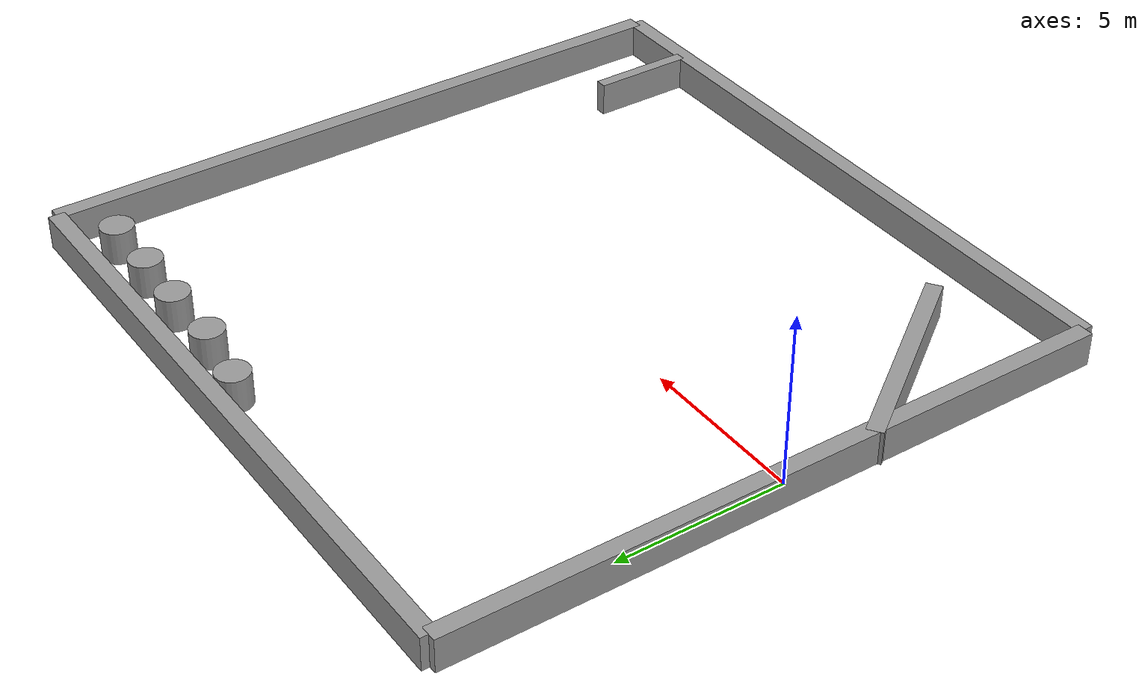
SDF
<?xml version='1.0'?>
<sdf version='1.6'>
  <model name='room_4'>
    <link name='link'>
      <pose frame=''>0 0 0 0 -0 0</pose>
      <inertial>
        <mass>20.0619</mass>
        <inertia>
          <ixx>674.551</ixx>
          <ixy>0</ixy>
          <ixz>0</ixz>
          <iyy>3.34366</iyy>
          <iyz>0</iyz>
          <izz>674.551</izz>
        </inertia>
        <pose frame=''>0 0 0 0 -0 0</pose>
      </inertial>
      <self_collide>0</self_collide>
      <kinematic>0</kinematic>
      <visual name='visual'>
        <geometry>
          <box>
            <size>0.5 20 1</size>
          </box>
        </geometry>
        <material>
          <script>
            <name>Gazebo/Grey</name>
            <uri>file://media/materials/scripts/gazebo.material</uri>
          </script>
          <ambient>0.3 0.3 0.3 1</ambient>
          <diffuse>0.7 0.7 0.7 1</diffuse>
          <specular>0.01 0.01 0.01 1</specular>
          <emissive>0 0 0 1</emissive>
        </material>
        <pose frame=''>0 0 0 0 -0 0</pose>
        <transparency>0</transparency>
        <cast_shadows>1</cast_shadows>
      </visual>
      <collision name='collision'>
        <laser_retro>0</laser_retro>
        <max_contacts>10</max_contacts>
        <pose frame=''>0 0 0 0 -0 0</pose>
        <geometry>
          <box>
            <size>0.5 20 1</size>
          </box>
        </geometry>
        <surface>
          <friction>
            <ode>
              <mu>1</mu>
              <mu2>1</mu2>
              <fdir1>0 0 0</fdir1>
              <slip1>0</slip1>
              <slip2>0</slip2>
            </ode>
            <torsional>
              <coefficient>1</coefficient>
              <patch_radius>0</patch_radius>
              <surface_radius>0</surface_radius>
              <use_patch_radius>1</use_patch_radius>
              <ode>
                <slip>0</slip>
              </ode>
            </torsional>
          </friction>
          <bounce>
            <restitution_coefficient>0</restitution_coefficient>
            <threshold>1e+06</threshold>
          </bounce>
          <contact>
            <collide_without_contact>0</collide_without_contact>
            <collide_without_contact_bitmask>1</collide_without_contact_bitmask>
            <collide_bitmask>1</collide_bitmask>
            <ode>
              <soft_cfm>0</soft_cfm>
              <soft_erp>0.2</soft_erp>
              <kp>1e+13</kp>
              <kd>1</kd>
              <max_vel>0.01</max_vel>
              <min_depth>0</min_depth>
            </ode>
            <bullet>
              <split_impulse>1</split_impulse>
              <split_impulse_penetration_threshold>-0.01</split_impulse_penetration_threshold>
              <soft_cfm>0</soft_cfm>
              <soft_erp>0.2</soft_erp>
              <kp>1e+13</kp>
              <kd>1</kd>
            </bullet>
          </contact>
        </surface>
      </collision>
    </link>
    <link name='link_0'>
      <pose frame=''>9.97269 9.97653 -0 0 -0 0</pose>
      <inertial>
        <mass>20</mass>
        <inertia>
          <ixx>3.18262</ixx>
          <ixy>0</ixy>
          <ixz>0</ixz>
          <iyy>581.858</iyy>
          <iyz>0</iyz>
          <izz>581.858</izz>
        </inertia>
        <pose frame=''>0 0 0 0 -0 0</pose>
      </inertial>
      <self_collide>0</self_collide>
      <kinematic>0</kinematic>
      <visual name='visual'>
        <pose frame=''>0 0 0 0 -0 0</pose>
        <geometry>
          <box>
            <size>20 0.5 1</size>
          </box>
        </geometry>
        <material>
          <lighting>1</lighting>
          <script>
            <uri>file://media/materials/scripts/gazebo.material</uri>
            <name>Gazebo/Grey</name>
          </script>
          <ambient>0.3 0.3 0.3 1</ambient>
          <diffuse>0.7 0.7 0.7 1</diffuse>
          <specular>0.01 0.01 0.01 1</specular>
          <emissive>0 0 0 1</emissive>
        </material>
        <transparency>0</transparency>
        <cast_shadows>1</cast_shadows>
      </visual>
      <collision name='collision'>
        <laser_retro>0</laser_retro>
        <max_contacts>10</max_contacts>
        <pose frame=''>0 0 0 0 -0 0</pose>
        <geometry>
          <box>
            <size>20 0.5 1</size>
          </box>
        </geometry>
        <surface>
          <friction>
            <ode>
              <mu>1</mu>
              <mu2>1</mu2>
              <fdir1>0 0 0</fdir1>
              <slip1>0</slip1>
              <slip2>0</slip2>
            </ode>
            <torsional>
              <coefficient>1</coefficient>
              <patch_radius>0</patch_radius>
              <surface_radius>0</surface_radius>
              <use_patch_radius>1</use_patch_radius>
              <ode>
                <slip>0</slip>
              </ode>
            </torsional>
          </friction>
          <bounce>
            <restitution_coefficient>0</restitution_coefficient>
            <threshold>1e+06</threshold>
          </bounce>
          <contact>
            <collide_without_contact>0</collide_without_contact>
            <collide_without_contact_bitmask>1</collide_without_contact_bitmask>
            <collide_bitmask>1</collide_bitmask>
            <ode>
              <soft_cfm>0</soft_cfm>
              <soft_erp>0.2</soft_erp>
              <kp>1e+13</kp>
              <kd>1</kd>
              <max_vel>0.01</max_vel>
              <min_depth>0</min_depth>
            </ode>
            <bullet>
              <split_impulse>1</split_impulse>
              <split_impulse_penetration_threshold>-0.01</split_impulse_penetration_threshold>
              <soft_cfm>0</soft_cfm>
              <soft_erp>0.2</soft_erp>
              <kp>1e+13</kp>
              <kd>1</kd>
            </bullet>
          </contact>
        </surface>
      </collision>
    </link>
    <link name='link_0_0'>
      <pose frame=''>17.4137 -8.35041 1.8e-05 0 -0 8.6e-05</pose>
      <inertial>
        <mass>1.03672</mass>
        <inertia>
          <ixx>0.887737</ixx>
          <ixy>0</ixy>
          <ixz>0</ixz>
          <iyy>0.0964041</iyy>
          <iyz>0</iyz>
          <izz>0.811354</izz>
        </inertia>
        <pose frame=''>0 0 0 0 -0 0</pose>
      </inertial>
      <self_collide>0</self_collide>
      <kinematic>0</kinematic>
      <visual name='visual'>
        <pose frame=''>0 0 0 0 -0 0</pose>
        <geometry>
          <box>
            <size>0.340406 3.04557 1</size>
          </box>
        </geometry>
        <material>
          <lighting>1</lighting>
          <script>
            <uri>file://media/materials/scripts/gazebo.material</uri>
            <name>Gazebo/Grey</name>
          </script>
          <ambient>0.3 0.3 0.3 1</ambient>
          <diffuse>0.7 0.7 0.7 1</diffuse>
          <specular>0.01 0.01 0.01 1</specular>
          <emissive>0 0 0 1</emissive>
        </material>
        <transparency>0</transparency>
        <cast_shadows>1</cast_shadows>
      </visual>
      <collision name='collision'>
        <laser_retro>0</laser_retro>
        <max_contacts>10</max_contacts>
        <pose frame=''>0 0 0 0 -0 0</pose>
        <geometry>
          <box>
            <size>0.340406 3.04557 1</size>
          </box>
        </geometry>
        <surface>
          <friction>
            <ode>
              <mu>1</mu>
              <mu2>1</mu2>
              <fdir1>0 0 0</fdir1>
              <slip1>0</slip1>
              <slip2>0</slip2>
            </ode>
            <torsional>
              <coefficient>1</coefficient>
              <patch_radius>0</patch_radius>
              <surface_radius>0</surface_radius>
              <use_patch_radius>1</use_patch_radius>
              <ode>
                <slip>0</slip>
              </ode>
            </torsional>
          </friction>
          <bounce>
            <restitution_coefficient>0</restitution_coefficient>
            <threshold>1e+06</threshold>
          </bounce>
          <contact>
            <collide_without_contact>0</collide_without_contact>
            <collide_without_contact_bitmask>1</collide_without_contact_bitmask>
            <collide_bitmask>1</collide_bitmask>
            <ode>
              <soft_cfm>0</soft_cfm>
              <soft_erp>0.2</soft_erp>
              <kp>1e+13</kp>
              <kd>1</kd>
              <max_vel>0.01</max_vel>
              <min_depth>0</min_depth>
            </ode>
            <bullet>
              <split_impulse>1</split_impulse>
              <split_impulse_penetration_threshold>-0.01</split_impulse_penetration_threshold>
              <soft_cfm>0</soft_cfm>
              <soft_erp>0.2</soft_erp>
              <kp>1e+13</kp>
              <kd>1</kd>
            </bullet>
          </contact>
        </surface>
      </collision>
    </link>
    <link name='link_1'>
      <pose frame=''>20 -0 -0 0 -0 0</pose>
      <inertial>
        <mass>18.076</mass>
        <inertia>
          <ixx>493.69</ixx>
          <ixy>0</ixy>
          <ixz>0</ixz>
          <iyy>3.01267</iyy>
          <iyz>0</iyz>
          <izz>493.69</izz>
        </inertia>
        <pose frame=''>0 0 0 0 -0 0</pose>
      </inertial>
      <self_collide>0</self_collide>
      <kinematic>0</kinematic>
      <visual name='visual'>
        <pose frame=''>0 0 0 0 -0 0</pose>
        <geometry>
          <box>
            <size>0.5 20 1</size>
          </box>
        </geometry>
        <material>
          <lighting>1</lighting>
          <script>
            <uri>file://media/materials/scripts/gazebo.material</uri>
            <name>Gazebo/Grey</name>
          </script>
          <ambient>0.3 0.3 0.3 1</ambient>
          <diffuse>0.7 0.7 0.7 1</diffuse>
          <specular>0.01 0.01 0.01 1</specular>
          <emissive>0 0 0 1</emissive>
        </material>
        <transparency>0</transparency>
        <cast_shadows>1</cast_shadows>
      </visual>
      <collision name='collision'>
        <laser_retro>0</laser_retro>
        <max_contacts>10</max_contacts>
        <pose frame=''>0 0 0 0 -0 0</pose>
        <geometry>
          <box>
            <size>0.5 20 1</size>
          </box>
        </geometry>
        <surface>
          <friction>
            <ode>
              <mu>1</mu>
              <mu2>1</mu2>
              <fdir1>0 0 0</fdir1>
              <slip1>0</slip1>
              <slip2>0</slip2>
            </ode>
            <torsional>
              <coefficient>1</coefficient>
              <patch_radius>0</patch_radius>
              <surface_radius>0</surface_radius>
              <use_patch_radius>1</use_patch_radius>
              <ode>
                <slip>0</slip>
              </ode>
            </torsional>
          </friction>
          <bounce>
            <restitution_coefficient>0</restitution_coefficient>
            <threshold>1e+06</threshold>
          </bounce>
          <contact>
            <collide_without_contact>0</collide_without_contact>
            <collide_without_contact_bitmask>1</collide_without_contact_bitmask>
            <collide_bitmask>1</collide_bitmask>
            <ode>
              <soft_cfm>0</soft_cfm>
              <soft_erp>0.2</soft_erp>
              <kp>1e+13</kp>
              <kd>1</kd>
              <max_vel>0.01</max_vel>
              <min_depth>0</min_depth>
            </ode>
            <bullet>
              <split_impulse>1</split_impulse>
              <split_impulse_penetration_threshold>-0.01</split_impulse_penetration_threshold>
              <soft_cfm>0</soft_cfm>
              <soft_erp>0.2</soft_erp>
              <kp>1e+13</kp>
              <kd>1</kd>
            </bullet>
          </contact>
        </surface>
      </collision>
    </link>
    <link name='link_1_0'>
      <pose frame=''>18.5607 8.79995 1.4e-05 0 -0 8.6e-05</pose>
      <inertial>
        <mass>1</mass>
        <inertia>
          <ixx>0.145833</ixx>
          <ixy>0</ixy>
          <ixz>0</ixz>
          <iyy>0.145833</iyy>
          <iyz>0</iyz>
          <izz>0.125</izz>
        </inertia>
      </inertial>
      <self_collide>0</self_collide>
      <kinematic>0</kinematic>
      <visual name='visual'>
        <pose frame=''>0 0 0 0 -0 0</pose>
        <geometry>
          <cylinder>
            <radius>0.5</radius>
            <length>1</length>
          </cylinder>
        </geometry>
        <material>
          <lighting>1</lighting>
          <script>
            <uri>file://media/materials/scripts/gazebo.material</uri>
            <name>Gazebo/Grey</name>
          </script>
          <ambient>0.3 0.3 0.3 1</ambient>
          <diffuse>0.7 0.7 0.7 1</diffuse>
          <specular>0.01 0.01 0.01 1</specular>
          <emissive>0 0 0 1</emissive>
        </material>
        <transparency>0</transparency>
        <cast_shadows>1</cast_shadows>
      </visual>
      <collision name='collision'>
        <laser_retro>0</laser_retro>
        <max_contacts>10</max_contacts>
        <pose frame=''>0 0 0 0 -0 0</pose>
        <geometry>
          <cylinder>
            <radius>0.5</radius>
            <length>1</length>
          </cylinder>
        </geometry>
        <surface>
          <friction>
            <ode>
              <mu>1</mu>
              <mu2>1</mu2>
              <fdir1>0 0 0</fdir1>
              <slip1>0</slip1>
              <slip2>0</slip2>
            </ode>
            <torsional>
              <coefficient>1</coefficient>
              <patch_radius>0</patch_radius>
              <surface_radius>0</surface_radius>
              <use_patch_radius>1</use_patch_radius>
              <ode>
                <slip>0</slip>
              </ode>
            </torsional>
          </friction>
          <bounce>
            <restitution_coefficient>0</restitution_coefficient>
            <threshold>1e+06</threshold>
          </bounce>
          <contact>
            <collide_without_contact>0</collide_without_contact>
            <collide_without_contact_bitmask>1</collide_without_contact_bitmask>
            <collide_bitmask>1</collide_bitmask>
            <ode>
              <soft_cfm>0</soft_cfm>
              <soft_erp>0.2</soft_erp>
              <kp>1e+13</kp>
              <kd>1</kd>
              <max_vel>0.01</max_vel>
              <min_depth>0</min_depth>
            </ode>
            <bullet>
              <split_impulse>1</split_impulse>
              <split_impulse_penetration_threshold>-0.01</split_impulse_penetration_threshold>
              <soft_cfm>0</soft_cfm>
              <soft_erp>0.2</soft_erp>
              <kp>1e+13</kp>
              <kd>1</kd>
            </bullet>
          </contact>
        </surface>
      </collision>
    </link>
    <link name='link_2'>
      <pose frame=''>10 -10 0 0 -0 0</pose>
      <inertial>
        <mass>18.8281</mass>
        <inertia>
          <ixx>3.13802</ixx>
          <ixy>0</ixy>
          <ixz>0</ixz>
          <iyy>557.78</iyy>
          <iyz>0</iyz>
          <izz>557.78</izz>
        </inertia>
        <pose frame=''>0 0 0 0 -0 0</pose>
      </inertial>
      <self_collide>0</self_collide>
      <kinematic>0</kinematic>
      <visual name='visual'>
        <pose frame=''>0 0 0 0 -0 0</pose>
        <geometry>
          <box>
            <size>20 0.5 1</size>
          </box>
        </geometry>
        <material>
          <lighting>1</lighting>
          <script>
            <uri>file://media/materials/scripts/gazebo.material</uri>
            <name>Gazebo/Grey</name>
          </script>
          <ambient>0.3 0.3 0.3 1</ambient>
          <diffuse>0.7 0.7 0.7 1</diffuse>
          <specular>0.01 0.01 0.01 1</specular>
          <emissive>0 0 0 1</emissive>
        </material>
        <transparency>0</transparency>
        <cast_shadows>1</cast_shadows>
      </visual>
      <collision name='collision'>
        <laser_retro>0</laser_retro>
        <max_contacts>10</max_contacts>
        <pose frame=''>0 0 0 0 -0 0</pose>
        <geometry>
          <box>
            <size>20 0.5 1</size>
          </box>
        </geometry>
        <surface>
          <friction>
            <ode>
              <mu>1</mu>
              <mu2>1</mu2>
              <fdir1>0 0 0</fdir1>
              <slip1>0</slip1>
              <slip2>0</slip2>
            </ode>
            <torsional>
              <coefficient>1</coefficient>
              <patch_radius>0</patch_radius>
              <surface_radius>0</surface_radius>
              <use_patch_radius>1</use_patch_radius>
              <ode>
                <slip>0</slip>
              </ode>
            </torsional>
          </friction>
          <bounce>
            <restitution_coefficient>0</restitution_coefficient>
            <threshold>1e+06</threshold>
          </bounce>
          <contact>
            <collide_without_contact>0</collide_without_contact>
            <collide_without_contact_bitmask>1</collide_without_contact_bitmask>
            <collide_bitmask>1</collide_bitmask>
            <ode>
              <soft_cfm>0</soft_cfm>
              <soft_erp>0.2</soft_erp>
              <kp>1e+13</kp>
              <kd>1</kd>
              <max_vel>0.01</max_vel>
              <min_depth>0</min_depth>
            </ode>
            <bullet>
              <split_impulse>1</split_impulse>
              <split_impulse_penetration_threshold>-0.01</split_impulse_penetration_threshold>
              <soft_cfm>0</soft_cfm>
              <soft_erp>0.2</soft_erp>
              <kp>1e+13</kp>
              <kd>1</kd>
            </bullet>
          </contact>
        </surface>
      </collision>
    </link>
    <link name='link_2_0'>
      <pose frame=''>16.6555 8.8339 1.4e-05 0 -0 8.6e-05</pose>
      <inertial>
        <mass>1</mass>
        <inertia>
          <ixx>0.145833</ixx>
          <ixy>0</ixy>
          <ixz>0</ixz>
          <iyy>0.145833</iyy>
          <iyz>0</iyz>
          <izz>0.125</izz>
        </inertia>
      </inertial>
      <self_collide>0</self_collide>
      <kinematic>0</kinematic>
      <visual name='visual'>
        <pose frame=''>0 0 0 0 -0 0</pose>
        <geometry>
          <cylinder>
            <radius>0.5</radius>
            <length>1</length>
          </cylinder>
        </geometry>
        <material>
          <lighting>1</lighting>
          <script>
            <uri>file://media/materials/scripts/gazebo.material</uri>
            <name>Gazebo/Grey</name>
          </script>
          <ambient>0.3 0.3 0.3 1</ambient>
          <diffuse>0.7 0.7 0.7 1</diffuse>
          <specular>0.01 0.01 0.01 1</specular>
          <emissive>0 0 0 1</emissive>
        </material>
        <transparency>0</transparency>
        <cast_shadows>1</cast_shadows>
      </visual>
      <collision name='collision'>
        <laser_retro>0</laser_retro>
        <max_contacts>10</max_contacts>
        <pose frame=''>0 0 0 0 -0 0</pose>
        <geometry>
          <cylinder>
            <radius>0.5</radius>
            <length>1</length>
          </cylinder>
        </geometry>
        <surface>
          <friction>
            <ode>
              <mu>1</mu>
              <mu2>1</mu2>
              <fdir1>0 0 0</fdir1>
              <slip1>0</slip1>
              <slip2>0</slip2>
            </ode>
            <torsional>
              <coefficient>1</coefficient>
              <patch_radius>0</patch_radius>
              <surface_radius>0</surface_radius>
              <use_patch_radius>1</use_patch_radius>
              <ode>
                <slip>0</slip>
              </ode>
            </torsional>
          </friction>
          <bounce>
            <restitution_coefficient>0</restitution_coefficient>
            <threshold>1e+06</threshold>
          </bounce>
          <contact>
            <collide_without_contact>0</collide_without_contact>
            <collide_without_contact_bitmask>1</collide_without_contact_bitmask>
            <collide_bitmask>1</collide_bitmask>
            <ode>
              <soft_cfm>0</soft_cfm>
              <soft_erp>0.2</soft_erp>
              <kp>1e+13</kp>
              <kd>1</kd>
              <max_vel>0.01</max_vel>
              <min_depth>0</min_depth>
            </ode>
            <bullet>
              <split_impulse>1</split_impulse>
              <split_impulse_penetration_threshold>-0.01</split_impulse_penetration_threshold>
              <soft_cfm>0</soft_cfm>
              <soft_erp>0.2</soft_erp>
              <kp>1e+13</kp>
              <kd>1</kd>
            </bullet>
          </contact>
        </surface>
      </collision>
    </link>
    <link name='link_4'>
      <pose frame=''>14.8209 8.91674 1.3e-05 0 -0 8.6e-05</pose>
      <inertial>
        <mass>1</mass>
        <inertia>
          <ixx>0.145833</ixx>
          <ixy>0</ixy>
          <ixz>0</ixz>
          <iyy>0.145833</iyy>
          <iyz>0</iyz>
          <izz>0.125</izz>
        </inertia>
      </inertial>
      <self_collide>0</self_collide>
      <kinematic>0</kinematic>
      <visual name='visual'>
        <pose frame=''>0 0 0 0 -0 0</pose>
        <geometry>
          <cylinder>
            <radius>0.5</radius>
            <length>1</length>
          </cylinder>
        </geometry>
        <material>
          <lighting>1</lighting>
          <script>
            <uri>file://media/materials/scripts/gazebo.material</uri>
            <name>Gazebo/Grey</name>
          </script>
          <ambient>0.3 0.3 0.3 1</ambient>
          <diffuse>0.7 0.7 0.7 1</diffuse>
          <specular>0.01 0.01 0.01 1</specular>
          <emissive>0 0 0 1</emissive>
        </material>
        <transparency>0</transparency>
        <cast_shadows>1</cast_shadows>
      </visual>
      <collision name='collision'>
        <laser_retro>0</laser_retro>
        <max_contacts>10</max_contacts>
        <pose frame=''>0 0 0 0 -0 0</pose>
        <geometry>
          <cylinder>
            <radius>0.5</radius>
            <length>1</length>
          </cylinder>
        </geometry>
        <surface>
          <friction>
            <ode>
              <mu>1</mu>
              <mu2>1</mu2>
              <fdir1>0 0 0</fdir1>
              <slip1>0</slip1>
              <slip2>0</slip2>
            </ode>
            <torsional>
              <coefficient>1</coefficient>
              <patch_radius>0</patch_radius>
              <surface_radius>0</surface_radius>
              <use_patch_radius>1</use_patch_radius>
              <ode>
                <slip>0</slip>
              </ode>
            </torsional>
          </friction>
          <bounce>
            <restitution_coefficient>0</restitution_coefficient>
            <threshold>1e+06</threshold>
          </bounce>
          <contact>
            <collide_without_contact>0</collide_without_contact>
            <collide_without_contact_bitmask>1</collide_without_contact_bitmask>
            <collide_bitmask>1</collide_bitmask>
            <ode>
              <soft_cfm>0</soft_cfm>
              <soft_erp>0.2</soft_erp>
              <kp>1e+13</kp>
              <kd>1</kd>
              <max_vel>0.01</max_vel>
              <min_depth>0</min_depth>
            </ode>
            <bullet>
              <split_impulse>1</split_impulse>
              <split_impulse_penetration_threshold>-0.01</split_impulse_penetration_threshold>
              <soft_cfm>0</soft_cfm>
              <soft_erp>0.2</soft_erp>
              <kp>1e+13</kp>
              <kd>1</kd>
            </bullet>
          </contact>
        </surface>
      </collision>
    </link>
    <link name='link_5'>
      <pose frame=''>12.8202 8.90936 1.2e-05 0 -0 8.6e-05</pose>
      <inertial>
        <mass>1</mass>
        <inertia>
          <ixx>0.145833</ixx>
          <ixy>0</ixy>
          <ixz>0</ixz>
          <iyy>0.145833</iyy>
          <iyz>0</iyz>
          <izz>0.125</izz>
        </inertia>
      </inertial>
      <self_collide>0</self_collide>
      <kinematic>0</kinematic>
      <visual name='visual'>
        <pose frame=''>0 0 0 0 -0 0</pose>
        <geometry>
          <cylinder>
            <radius>0.5</radius>
            <length>1</length>
          </cylinder>
        </geometry>
        <material>
          <lighting>1</lighting>
          <script>
            <uri>file://media/materials/scripts/gazebo.material</uri>
            <name>Gazebo/Grey</name>
          </script>
          <ambient>0.3 0.3 0.3 1</ambient>
          <diffuse>0.7 0.7 0.7 1</diffuse>
          <specular>0.01 0.01 0.01 1</specular>
          <emissive>0 0 0 1</emissive>
        </material>
        <transparency>0</transparency>
        <cast_shadows>1</cast_shadows>
      </visual>
      <collision name='collision'>
        <laser_retro>0</laser_retro>
        <max_contacts>10</max_contacts>
        <pose frame=''>0 0 0 0 -0 0</pose>
        <geometry>
          <cylinder>
            <radius>0.5</radius>
            <length>1</length>
          </cylinder>
        </geometry>
        <surface>
          <friction>
            <ode>
              <mu>1</mu>
              <mu2>1</mu2>
              <fdir1>0 0 0</fdir1>
              <slip1>0</slip1>
              <slip2>0</slip2>
            </ode>
            <torsional>
              <coefficient>1</coefficient>
              <patch_radius>0</patch_radius>
              <surface_radius>0</surface_radius>
              <use_patch_radius>1</use_patch_radius>
              <ode>
                <slip>0</slip>
              </ode>
            </torsional>
          </friction>
          <bounce>
            <restitution_coefficient>0</restitution_coefficient>
            <threshold>1e+06</threshold>
          </bounce>
          <contact>
            <collide_without_contact>0</collide_without_contact>
            <collide_without_contact_bitmask>1</collide_without_contact_bitmask>
            <collide_bitmask>1</collide_bitmask>
            <ode>
              <soft_cfm>0</soft_cfm>
              <soft_erp>0.2</soft_erp>
              <kp>1e+13</kp>
              <kd>1</kd>
              <max_vel>0.01</max_vel>
              <min_depth>0</min_depth>
            </ode>
            <bullet>
              <split_impulse>1</split_impulse>
              <split_impulse_penetration_threshold>-0.01</split_impulse_penetration_threshold>
              <soft_cfm>0</soft_cfm>
              <soft_erp>0.2</soft_erp>
              <kp>1e+13</kp>
              <kd>1</kd>
            </bullet>
          </contact>
        </surface>
      </collision>
    </link>
    <link name='link_6'>
      <pose frame=''>10.813 9.19796 1.1e-05 0 -0 8.6e-05</pose>
      <inertial>
        <mass>1</mass>
        <inertia>
          <ixx>0.145833</ixx>
          <ixy>0</ixy>
          <ixz>0</ixz>
          <iyy>0.145833</iyy>
          <iyz>0</iyz>
          <izz>0.125</izz>
        </inertia>
      </inertial>
      <self_collide>0</self_collide>
      <kinematic>0</kinematic>
      <visual name='visual'>
        <pose frame=''>0 0 0 0 -0 0</pose>
        <geometry>
          <cylinder>
            <radius>0.5</radius>
            <length>1</length>
          </cylinder>
        </geometry>
        <material>
          <lighting>1</lighting>
          <script>
            <uri>file://media/materials/scripts/gazebo.material</uri>
            <name>Gazebo/Grey</name>
          </script>
          <ambient>0.3 0.3 0.3 1</ambient>
          <diffuse>0.7 0.7 0.7 1</diffuse>
          <specular>0.01 0.01 0.01 1</specular>
          <emissive>0 0 0 1</emissive>
        </material>
        <transparency>0</transparency>
        <cast_shadows>1</cast_shadows>
      </visual>
      <collision name='collision'>
        <laser_retro>0</laser_retro>
        <max_contacts>10</max_contacts>
        <pose frame=''>0 0 0 0 -0 0</pose>
        <geometry>
          <cylinder>
            <radius>0.5</radius>
            <length>1</length>
          </cylinder>
        </geometry>
        <surface>
          <friction>
            <ode>
              <mu>1</mu>
              <mu2>1</mu2>
              <fdir1>0 0 0</fdir1>
              <slip1>0</slip1>
              <slip2>0</slip2>
            </ode>
            <torsional>
              <coefficient>1</coefficient>
              <patch_radius>0</patch_radius>
              <surface_radius>0</surface_radius>
              <use_patch_radius>1</use_patch_radius>
              <ode>
                <slip>0</slip>
              </ode>
            </torsional>
          </friction>
          <bounce>
            <restitution_coefficient>0</restitution_coefficient>
            <threshold>1e+06</threshold>
          </bounce>
          <contact>
            <collide_without_contact>0</collide_without_contact>
            <collide_without_contact_bitmask>1</collide_without_contact_bitmask>
            <collide_bitmask>1</collide_bitmask>
            <ode>
              <soft_cfm>0</soft_cfm>
              <soft_erp>0.2</soft_erp>
              <kp>1e+13</kp>
              <kd>1</kd>
              <max_vel>0.01</max_vel>
              <min_depth>0</min_depth>
            </ode>
            <bullet>
              <split_impulse>1</split_impulse>
              <split_impulse_penetration_threshold>-0.01</split_impulse_penetration_threshold>
              <soft_cfm>0</soft_cfm>
              <soft_erp>0.2</soft_erp>
              <kp>1e+13</kp>
              <kd>1</kd>
            </bullet>
          </contact>
        </surface>
      </collision>
    </link>
    <link name='link_7'>
      <pose frame=''>1.7817 -5.40911 1e-05 -1e-06 -0 0.617071</pose>
      <inertial>
        <mass>3.18264</mass>
        <inertia>
          <ixx>11.9008</ixx>
          <ixy>0</ixy>
          <ixz>0</ixz>
          <iyy>0.326454</iyy>
          <iyz>0</iyz>
          <izz>11.6968</izz>
        </inertia>
        <pose frame=''>0 0 0 0 -0 0</pose>
      </inertial>
      <self_collide>0</self_collide>
      <kinematic>0</kinematic>
      <visual name='visual'>
        <pose frame=''>0 0 0 0 -0 0</pose>
        <geometry>
          <box>
            <size>0.480513 6.62357 1</size>
          </box>
        </geometry>
        <material>
          <lighting>1</lighting>
          <script>
            <uri>file://media/materials/scripts/gazebo.material</uri>
            <name>Gazebo/Grey</name>
          </script>
          <ambient>0.3 0.3 0.3 1</ambient>
          <diffuse>0.7 0.7 0.7 1</diffuse>
          <specular>0.01 0.01 0.01 1</specular>
          <emissive>0 0 0 1</emissive>
        </material>
        <transparency>0</transparency>
        <cast_shadows>1</cast_shadows>
      </visual>
      <collision name='collision'>
        <laser_retro>0</laser_retro>
        <max_contacts>10</max_contacts>
        <pose frame=''>0 0 0 0 -0 0</pose>
        <geometry>
          <box>
            <size>0.480513 6.62357 1</size>
          </box>
        </geometry>
        <surface>
          <friction>
            <ode>
              <mu>1</mu>
              <mu2>1</mu2>
              <fdir1>0 0 0</fdir1>
              <slip1>0</slip1>
              <slip2>0</slip2>
            </ode>
            <torsional>
              <coefficient>1</coefficient>
              <patch_radius>0</patch_radius>
              <surface_radius>0</surface_radius>
              <use_patch_radius>1</use_patch_radius>
              <ode>
                <slip>0</slip>
              </ode>
            </torsional>
          </friction>
          <bounce>
            <restitution_coefficient>0</restitution_coefficient>
            <threshold>1e+06</threshold>
          </bounce>
          <contact>
            <collide_without_contact>0</collide_without_contact>
            <collide_without_contact_bitmask>1</collide_without_contact_bitmask>
            <collide_bitmask>1</collide_bitmask>
            <ode>
              <soft_cfm>0</soft_cfm>
              <soft_erp>0.2</soft_erp>
              <kp>1e+13</kp>
              <kd>1</kd>
              <max_vel>0.01</max_vel>
              <min_depth>0</min_depth>
            </ode>
            <bullet>
              <split_impulse>1</split_impulse>
              <split_impulse_penetration_threshold>-0.01</split_impulse_penetration_threshold>
              <soft_cfm>0</soft_cfm>
              <soft_erp>0.2</soft_erp>
              <kp>1e+13</kp>
              <kd>1</kd>
            </bullet>
          </contact>
        </surface>
      </collision>
    </link>
    <joint name='link_0_0_JOINT_0' type='fixed'>
      <parent>link_0_0</parent>
      <child>link_2</child>
      <pose frame=''>0 0 0 0 -0 0</pose>
      <physics>
        <ode>
          <limit>
            <cfm>0</cfm>
            <erp>0.2</erp>
          </limit>
          <suspension>
            <cfm>0</cfm>
            <erp>0.2</erp>
          </suspension>
        </ode>
      </physics>
    </joint>
    <joint name='link_0_JOINT_1' type='screw'>
      <parent>link_0</parent>
      <child>link_1</child>
      <pose frame=''>0 0 0 0 -0 0</pose>
      <axis>
        <xyz>1 0 0</xyz>
        <use_parent_model_frame>0</use_parent_model_frame>
        <limit>
          <lower>-1.79769e+308</lower>
          <upper>1.79769e+308</upper>
          <effort>-1</effort>
          <velocity>-1</velocity>
        </limit>
        <dynamics>
          <spring_reference>0</spring_reference>
          <spring_stiffness>0</spring_stiffness>
          <damping>0</damping>
          <friction>0</friction>
        </dynamics>
      </axis>
      <physics>
        <ode>
          <limit>
            <cfm>0</cfm>
            <erp>0.2</erp>
          </limit>
          <suspension>
            <cfm>0</cfm>
            <erp>0.2</erp>
          </suspension>
        </ode>
      </physics>
    </joint>
    <joint name='link_0_JOINT_2' type='screw'>
      <parent>link_0</parent>
      <child>link_2</child>
      <pose frame=''>0 0 0 0 -0 0</pose>
      <axis>
        <xyz>1 0 0</xyz>
        <use_parent_model_frame>0</use_parent_model_frame>
        <limit>
          <lower>-1.79769e+308</lower>
          <upper>1.79769e+308</upper>
          <effort>-1</effort>
          <velocity>-1</velocity>
        </limit>
        <dynamics>
          <spring_reference>0</spring_reference>
          <spring_stiffness>0</spring_stiffness>
          <damping>0</damping>
          <friction>0</friction>
        </dynamics>
      </axis>
      <physics>
        <ode>
          <limit>
            <cfm>0</cfm>
            <erp>0.2</erp>
          </limit>
          <suspension>
            <cfm>0</cfm>
            <erp>0.2</erp>
          </suspension>
        </ode>
      </physics>
    </joint>
    <joint name='link_0_JOINT_6' type='fixed'>
      <parent>link_0</parent>
      <child>link_5</child>
      <pose frame=''>0 0 0 0 -0 0</pose>
      <physics>
        <ode>
          <limit>
            <cfm>0</cfm>
            <erp>0.2</erp>
          </limit>
          <suspension>
            <cfm>0</cfm>
            <erp>0.2</erp>
          </suspension>
        </ode>
      </physics>
    </joint>
    <joint name='link_1_0_JOINT_1' type='fixed'>
      <parent>link_1_0</parent>
      <child>link_1</child>
      <pose frame=''>0 0 0 0 -0 0</pose>
      <physics>
        <ode>
          <limit>
            <cfm>0</cfm>
            <erp>0.2</erp>
          </limit>
          <suspension>
            <cfm>0</cfm>
            <erp>0.2</erp>
          </suspension>
        </ode>
      </physics>
    </joint>
    <joint name='link_2_0_JOINT_2' type='fixed'>
      <parent>link_2_0</parent>
      <child>link_1_0</child>
      <pose frame=''>0 0 0 0 -0 0</pose>
      <physics>
        <ode>
          <limit>
            <cfm>0</cfm>
            <erp>0.2</erp>
          </limit>
          <suspension>
            <cfm>0</cfm>
            <erp>0.2</erp>
          </suspension>
        </ode>
      </physics>
    </joint>
    <joint name='link_4_JOINT_3' type='fixed'>
      <parent>link_4</parent>
      <child>link_2_0</child>
      <pose frame=''>0 0 0 0 -0 0</pose>
      <physics>
        <ode>
          <limit>
            <cfm>0</cfm>
            <erp>0.2</erp>
          </limit>
          <suspension>
            <cfm>0</cfm>
            <erp>0.2</erp>
          </suspension>
        </ode>
      </physics>
    </joint>
    <joint name='link_4_JOINT_4' type='fixed'>
      <parent>link_4</parent>
      <child>link_1</child>
      <pose frame=''>0 0 0 0 -0 0</pose>
      <physics>
        <ode>
          <limit>
            <cfm>0</cfm>
            <erp>0.2</erp>
          </limit>
          <suspension>
            <cfm>0</cfm>
            <erp>0.2</erp>
          </suspension>
        </ode>
      </physics>
    </joint>
    <joint name='link_4_JOINT_7' type='fixed'>
      <parent>link_4</parent>
      <child>link_5</child>
      <pose frame=''>0 0 0 0 -0 0</pose>
      <physics>
        <ode>
          <limit>
            <cfm>0</cfm>
            <erp>0.2</erp>
          </limit>
          <suspension>
            <cfm>0</cfm>
            <erp>0.2</erp>
          </suspension>
        </ode>
      </physics>
    </joint>
    <joint name='link_6_JOINT_5' type='fixed'>
      <parent>link_6</parent>
      <child>link_0</child>
      <pose frame=''>0 0 0 0 -0 0</pose>
      <physics>
        <ode>
          <limit>
            <cfm>0</cfm>
            <erp>0.2</erp>
          </limit>
          <suspension>
            <cfm>0</cfm>
            <erp>0.2</erp>
          </suspension>
        </ode>
      </physics>
    </joint>
    <joint name='link_7_JOINT_8' type='fixed'>
      <parent>link_7</parent>
      <child>link</child>
      <pose frame=''>0 0 0 0 -0 0</pose>
      <physics>
        <ode>
          <limit>
            <cfm>0</cfm>
            <erp>0.2</erp>
          </limit>
          <suspension>
            <cfm>0</cfm>
            <erp>0.2</erp>
          </suspension>
        </ode>
      </physics>
    </joint>
    <joint name='link_JOINT_0' type='screw'>
      <parent>link</parent>
      <child>link_0</child>
      <pose frame=''>0 0 0 0 -0 0</pose>
      <axis>
        <xyz>1 0 0</xyz>
        <use_parent_model_frame>0</use_parent_model_frame>
        <limit>
          <lower>-1.79769e+308</lower>
          <upper>1.79769e+308</upper>
          <effort>-1</effort>
          <velocity>-1</velocity>
        </limit>
        <dynamics>
          <spring_reference>0</spring_reference>
          <spring_stiffness>0</spring_stiffness>
          <damping>0</damping>
          <friction>0</friction>
        </dynamics>
      </axis>
      <physics>
        <ode>
          <limit>
            <cfm>0</cfm>
            <erp>0.2</erp>
          </limit>
          <suspension>
            <cfm>0</cfm>
            <erp>0.2</erp>
          </suspension>
        </ode>
      </physics>
    </joint>
    <static>0</static>
    <allow_auto_disable>1</allow_auto_disable>
  </model>
</sdf>
